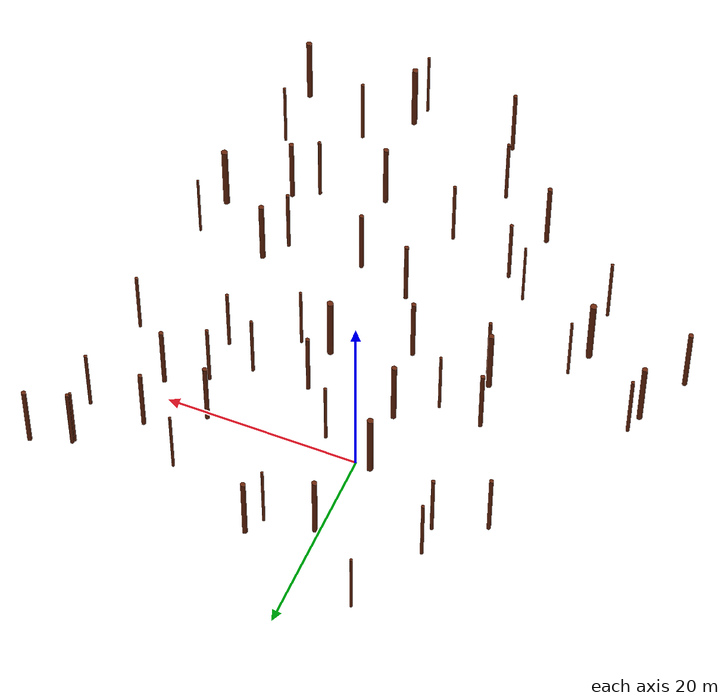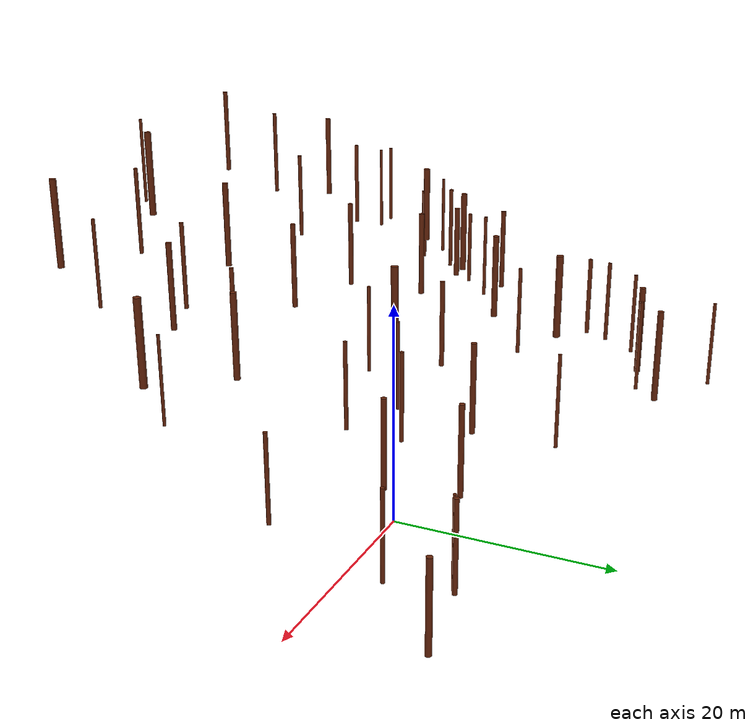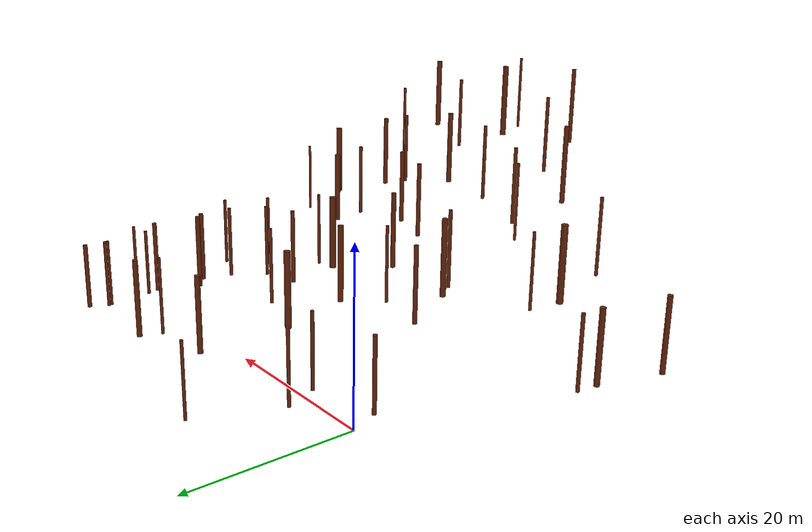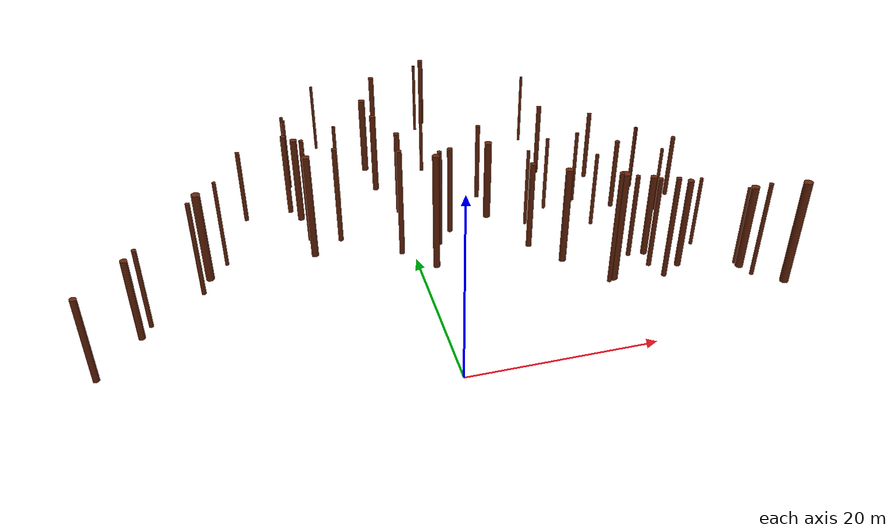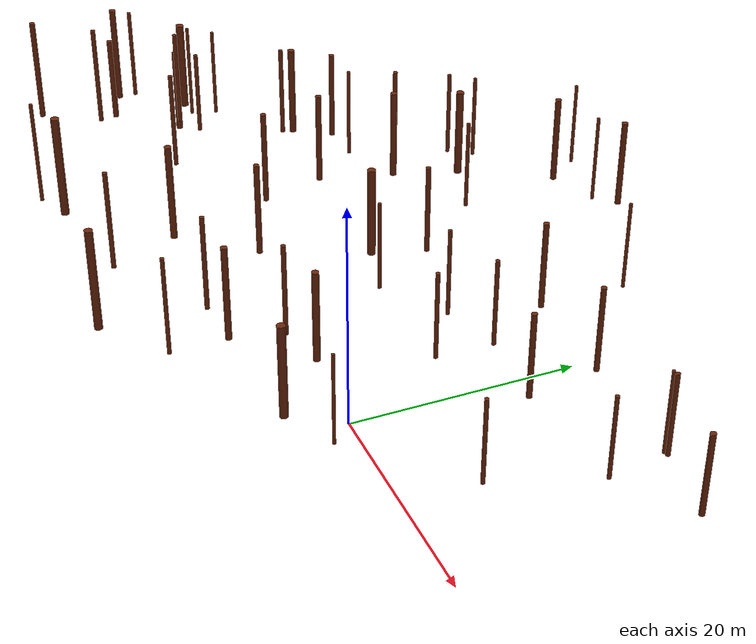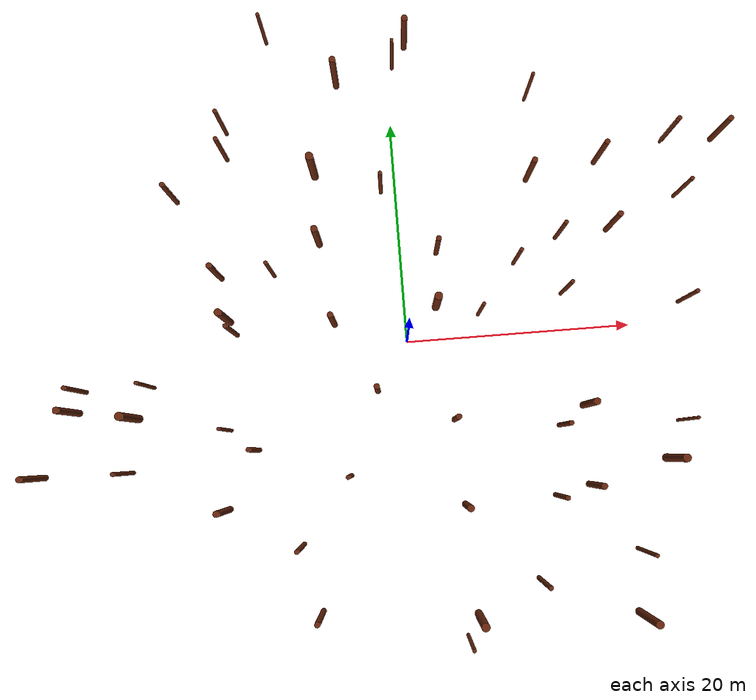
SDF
<sdf version="1.9">
 <world name="terrain_01">
  <plugin filename="gz-sim-physics-system" name="gz::sim::systems::Physics"/>
  <plugin filename="gz-sim-user-commands-system" name="gz::sim::systems::UserCommands"/>
  <plugin filename="gz-sim-scene-broadcaster-system" name="gz::sim::systems::SceneBroadcaster"/>
  <plugin filename="gz-sim-sensors-system" name="gz::sim::systems::Sensors">
   <render_engine>ogre2</render_engine>
  </plugin>
  <plugin filename="gz-sim-imu-system" name="gz::sim::systems::Imu"/>
  <plugin filename="gz-sim-navsat-system" name="gz::sim::systems::NavSat"/>
  <light type="directional" name="sun">
   <pose>0 -7000 7000 0 0 0</pose>
   <diffuse>0.9 0.88 0.82 1</diffuse>
   <specular>0 0 0 1</specular>
   <direction>0.0 0.6 -0.6</direction>
  </light>
  <scene>
   <ambient>0.45 0.48 0.55 1</ambient>
   <grid>false</grid>
   <origin_visual>false</origin_visual>
   <sky><time>10</time><sunrise>6</sunrise><sunset>20</sunset><clouds><speed>12</speed></clouds></sky>
  </scene>
  <physics name="1ms" type="ignored"><dart><collision_detector>bullet</collision_detector></dart></physics>
  <gravity>0 0 -9.8066</gravity>
  <spherical_coordinates>
   <surface_model>EARTH_WGS84</surface_model>
   <latitude_deg>46.492791061116634</latitude_deg>
   <longitude_deg>11.543607991400442</longitude_deg>
   <elevation>2014.2000000000007</elevation>
  </spherical_coordinates>
  <model name="tree_0001">
   <static>true</static>
   <pose>2.0496 -22.2879 30.4058 0 0 1.249334</pose>
   <link name="trunk">
    <visual name="trunk_visual">
     <geometry><cylinder><radius>0.1248</radius><length>7.0000</length></cylinder></geometry>
     <material>
      <ambient>0.22 0.08 0.025 1</ambient>
      <diffuse>0.40 0.14 0.04 1</diffuse>
      <specular>0.05 0.05 0.05 1</specular>
     </material>
    </visual>
    <collision name="trunk_collision">
     <geometry><cylinder><radius>0.1248</radius><length>7.0000</length></cylinder></geometry>
    </collision>
   </link>
  </model>
  <model name="tree_0002">
   <static>true</static>
   <pose>14.0777 -21.9928 27.9152 0 0 0.040833</pose>
   <link name="trunk">
    <visual name="trunk_visual">
     <geometry><cylinder><radius>0.2657</radius><length>7.0000</length></cylinder></geometry>
     <material>
      <ambient>0.22 0.08 0.025 1</ambient>
      <diffuse>0.40 0.14 0.04 1</diffuse>
      <specular>0.05 0.05 0.05 1</specular>
     </material>
    </visual>
    <collision name="trunk_collision">
     <geometry><cylinder><radius>0.2657</radius><length>7.0000</length></cylinder></geometry>
    </collision>
   </link>
  </model>
  <model name="tree_0003">
   <static>true</static>
   <pose>-7.4150 -19.8288 31.4658 0 0 3.468574</pose>
   <link name="trunk">
    <visual name="trunk_visual">
     <geometry><cylinder><radius>0.1881</radius><length>7.0000</length></cylinder></geometry>
     <material>
      <ambient>0.22 0.08 0.025 1</ambient>
      <diffuse>0.40 0.14 0.04 1</diffuse>
      <specular>0.05 0.05 0.05 1</specular>
     </material>
    </visual>
    <collision name="trunk_collision">
     <geometry><cylinder><radius>0.1881</radius><length>7.0000</length></cylinder></geometry>
    </collision>
   </link>
  </model>
  <model name="tree_0004">
   <static>true</static>
   <pose>2.9135 -21.0531 29.5807 0 0 3.627611</pose>
   <link name="trunk">
    <visual name="trunk_visual">
     <geometry><cylinder><radius>0.2751</radius><length>7.0000</length></cylinder></geometry>
     <material>
      <ambient>0.22 0.08 0.025 1</ambient>
      <diffuse>0.40 0.14 0.04 1</diffuse>
      <specular>0.05 0.05 0.05 1</specular>
     </material>
    </visual>
    <collision name="trunk_collision">
     <geometry><cylinder><radius>0.2751</radius><length>7.0000</length></cylinder></geometry>
    </collision>
   </link>
  </model>
  <model name="tree_0005">
   <static>true</static>
   <pose>7.4125 -19.2028 27.6254 0 0 1.818278</pose>
   <link name="trunk">
    <visual name="trunk_visual">
     <geometry><cylinder><radius>0.1610</radius><length>7.0000</length></cylinder></geometry>
     <material>
      <ambient>0.22 0.08 0.025 1</ambient>
      <diffuse>0.40 0.14 0.04 1</diffuse>
      <specular>0.05 0.05 0.05 1</specular>
     </material>
    </visual>
    <collision name="trunk_collision">
     <geometry><cylinder><radius>0.1610</radius><length>7.0000</length></cylinder></geometry>
    </collision>
   </link>
  </model>
  <model name="tree_0006">
   <static>true</static>
   <pose>14.8618 -17.9152 25.4113 0 0 1.746560</pose>
   <link name="trunk">
    <visual name="trunk_visual">
     <geometry><cylinder><radius>0.1382</radius><length>7.0000</length></cylinder></geometry>
     <material>
      <ambient>0.22 0.08 0.025 1</ambient>
      <diffuse>0.40 0.14 0.04 1</diffuse>
      <specular>0.05 0.05 0.05 1</specular>
     </material>
    </visual>
    <collision name="trunk_collision">
     <geometry><cylinder><radius>0.1382</radius><length>7.0000</length></cylinder></geometry>
    </collision>
   </link>
  </model>
  <model name="tree_0007">
   <static>true</static>
   <pose>-28.9152 -9.6150 18.7736 0 0 3.827283</pose>
   <link name="trunk">
    <visual name="trunk_visual">
     <geometry><cylinder><radius>0.2366</radius><length>7.0000</length></cylinder></geometry>
     <material>
      <ambient>0.22 0.08 0.025 1</ambient>
      <diffuse>0.40 0.14 0.04 1</diffuse>
      <specular>0.05 0.05 0.05 1</specular>
     </material>
    </visual>
    <collision name="trunk_collision">
     <geometry><cylinder><radius>0.2366</radius><length>7.0000</length></cylinder></geometry>
    </collision>
   </link>
  </model>
  <model name="tree_0008">
   <static>true</static>
   <pose>-20.8781 -9.7713 24.7475 0 0 2.384189</pose>
   <link name="trunk">
    <visual name="trunk_visual">
     <geometry><cylinder><radius>0.1494</radius><length>7.0000</length></cylinder></geometry>
     <material>
      <ambient>0.22 0.08 0.025 1</ambient>
      <diffuse>0.40 0.14 0.04 1</diffuse>
      <specular>0.05 0.05 0.05 1</specular>
     </material>
    </visual>
    <collision name="trunk_collision">
     <geometry><cylinder><radius>0.1494</radius><length>7.0000</length></cylinder></geometry>
    </collision>
   </link>
  </model>
  <model name="tree_0009">
   <static>true</static>
   <pose>-13.5623 -12.8031 28.5887 0 0 4.301558</pose>
   <link name="trunk">
    <visual name="trunk_visual">
     <geometry><cylinder><radius>0.2203</radius><length>7.0000</length></cylinder></geometry>
     <material>
      <ambient>0.22 0.08 0.025 1</ambient>
      <diffuse>0.40 0.14 0.04 1</diffuse>
      <specular>0.05 0.05 0.05 1</specular>
     </material>
    </visual>
    <collision name="trunk_collision">
     <geometry><cylinder><radius>0.2203</radius><length>7.0000</length></cylinder></geometry>
    </collision>
   </link>
  </model>
  <model name="tree_0010">
   <static>true</static>
   <pose>-8.5092 -15.5024 29.6798 0 0 0.201692</pose>
   <link name="trunk">
    <visual name="trunk_visual">
     <geometry><cylinder><radius>0.1612</radius><length>7.0000</length></cylinder></geometry>
     <material>
      <ambient>0.22 0.08 0.025 1</ambient>
      <diffuse>0.40 0.14 0.04 1</diffuse>
      <specular>0.05 0.05 0.05 1</specular>
     </material>
    </visual>
    <collision name="trunk_collision">
     <geometry><cylinder><radius>0.1612</radius><length>7.0000</length></cylinder></geometry>
    </collision>
   </link>
  </model>
  <model name="tree_0011">
   <static>true</static>
   <pose>-5.0462 -11.1677 26.9442 0 0 5.924476</pose>
   <link name="trunk">
    <visual name="trunk_visual">
     <geometry><cylinder><radius>0.1580</radius><length>7.0000</length></cylinder></geometry>
     <material>
      <ambient>0.22 0.08 0.025 1</ambient>
      <diffuse>0.40 0.14 0.04 1</diffuse>
      <specular>0.05 0.05 0.05 1</specular>
     </material>
    </visual>
    <collision name="trunk_collision">
     <geometry><cylinder><radius>0.1580</radius><length>7.0000</length></cylinder></geometry>
    </collision>
   </link>
  </model>
  <model name="tree_0012">
   <static>true</static>
   <pose>2.8249 -13.8338 25.9651 0 0 2.485829</pose>
   <link name="trunk">
    <visual name="trunk_visual">
     <geometry><cylinder><radius>0.2380</radius><length>7.0000</length></cylinder></geometry>
     <material>
      <ambient>0.22 0.08 0.025 1</ambient>
      <diffuse>0.40 0.14 0.04 1</diffuse>
      <specular>0.05 0.05 0.05 1</specular>
     </material>
    </visual>
    <collision name="trunk_collision">
     <geometry><cylinder><radius>0.2380</radius><length>7.0000</length></cylinder></geometry>
    </collision>
   </link>
  </model>
  <model name="tree_0013">
   <static>true</static>
   <pose>9.4895 -13.7487 24.2896 0 0 1.549606</pose>
   <link name="trunk">
    <visual name="trunk_visual">
     <geometry><cylinder><radius>0.1677</radius><length>7.0000</length></cylinder></geometry>
     <material>
      <ambient>0.22 0.08 0.025 1</ambient>
      <diffuse>0.40 0.14 0.04 1</diffuse>
      <specular>0.05 0.05 0.05 1</specular>
     </material>
    </visual>
    <collision name="trunk_collision">
     <geometry><cylinder><radius>0.1677</radius><length>7.0000</length></cylinder></geometry>
    </collision>
   </link>
  </model>
  <model name="tree_0014">
   <static>true</static>
   <pose>12.1381 -13.2023 23.4419 0 0 5.641188</pose>
   <link name="trunk">
    <visual name="trunk_visual">
     <geometry><cylinder><radius>0.2252</radius><length>7.0000</length></cylinder></geometry>
     <material>
      <ambient>0.22 0.08 0.025 1</ambient>
      <diffuse>0.40 0.14 0.04 1</diffuse>
      <specular>0.05 0.05 0.05 1</specular>
     </material>
    </visual>
    <collision name="trunk_collision">
     <geometry><cylinder><radius>0.2252</radius><length>7.0000</length></cylinder></geometry>
    </collision>
   </link>
  </model>
  <model name="tree_0015">
   <static>true</static>
   <pose>18.4495 -11.7835 21.1998 0 0 3.201448</pose>
   <link name="trunk">
    <visual name="trunk_visual">
     <geometry><cylinder><radius>0.2996</radius><length>7.0000</length></cylinder></geometry>
     <material>
      <ambient>0.22 0.08 0.025 1</ambient>
      <diffuse>0.40 0.14 0.04 1</diffuse>
      <specular>0.05 0.05 0.05 1</specular>
     </material>
    </visual>
    <collision name="trunk_collision">
     <geometry><cylinder><radius>0.2996</radius><length>7.0000</length></cylinder></geometry>
    </collision>
   </link>
  </model>
  <model name="tree_0016">
   <static>true</static>
   <pose>-26.2455 -4.8283 18.0254 0 0 2.652509</pose>
   <link name="trunk">
    <visual name="trunk_visual">
     <geometry><cylinder><radius>0.2626</radius><length>7.0000</length></cylinder></geometry>
     <material>
      <ambient>0.22 0.08 0.025 1</ambient>
      <diffuse>0.40 0.14 0.04 1</diffuse>
      <specular>0.05 0.05 0.05 1</specular>
     </material>
    </visual>
    <collision name="trunk_collision">
     <geometry><cylinder><radius>0.2626</radius><length>7.0000</length></cylinder></geometry>
    </collision>
   </link>
  </model>
  <model name="tree_0017">
   <static>true</static>
   <pose>-20.6082 -5.8529 23.1119 0 0 3.324523</pose>
   <link name="trunk">
    <visual name="trunk_visual">
     <geometry><cylinder><radius>0.2993</radius><length>7.0000</length></cylinder></geometry>
     <material>
      <ambient>0.22 0.08 0.025 1</ambient>
      <diffuse>0.40 0.14 0.04 1</diffuse>
      <specular>0.05 0.05 0.05 1</specular>
     </material>
    </visual>
    <collision name="trunk_collision">
     <geometry><cylinder><radius>0.2993</radius><length>7.0000</length></cylinder></geometry>
    </collision>
   </link>
  </model>
  <model name="tree_0018">
   <static>true</static>
   <pose>-13.4150 -7.3328 26.2119 0 0 4.528429</pose>
   <link name="trunk">
    <visual name="trunk_visual">
     <geometry><cylinder><radius>0.1221</radius><length>7.0000</length></cylinder></geometry>
     <material>
      <ambient>0.22 0.08 0.025 1</ambient>
      <diffuse>0.40 0.14 0.04 1</diffuse>
      <specular>0.05 0.05 0.05 1</specular>
     </material>
    </visual>
    <collision name="trunk_collision">
     <geometry><cylinder><radius>0.1221</radius><length>7.0000</length></cylinder></geometry>
    </collision>
   </link>
  </model>
  <model name="tree_0019">
   <static>true</static>
   <pose>-11.4475 -8.8719 26.8483 0 0 4.027282</pose>
   <link name="trunk">
    <visual name="trunk_visual">
     <geometry><cylinder><radius>0.1680</radius><length>7.0000</length></cylinder></geometry>
     <material>
      <ambient>0.22 0.08 0.025 1</ambient>
      <diffuse>0.40 0.14 0.04 1</diffuse>
      <specular>0.05 0.05 0.05 1</specular>
     </material>
    </visual>
    <collision name="trunk_collision">
     <geometry><cylinder><radius>0.1680</radius><length>7.0000</length></cylinder></geometry>
    </collision>
   </link>
  </model>
  <model name="tree_0020">
   <static>true</static>
   <pose>-2.7823 -5.2372 23.8527 0 0 5.993002</pose>
   <link name="trunk">
    <visual name="trunk_visual">
     <geometry><cylinder><radius>0.2017</radius><length>7.0000</length></cylinder></geometry>
     <material>
      <ambient>0.22 0.08 0.025 1</ambient>
      <diffuse>0.40 0.14 0.04 1</diffuse>
      <specular>0.05 0.05 0.05 1</specular>
     </material>
    </visual>
    <collision name="trunk_collision">
     <geometry><cylinder><radius>0.2017</radius><length>7.0000</length></cylinder></geometry>
    </collision>
   </link>
  </model>
  <model name="tree_0021">
   <static>true</static>
   <pose>2.6967 -7.7149 23.1717 0 0 1.122503</pose>
   <link name="trunk">
    <visual name="trunk_visual">
     <geometry><cylinder><radius>0.2101</radius><length>7.0000</length></cylinder></geometry>
     <material>
      <ambient>0.22 0.08 0.025 1</ambient>
      <diffuse>0.40 0.14 0.04 1</diffuse>
      <specular>0.05 0.05 0.05 1</specular>
     </material>
    </visual>
    <collision name="trunk_collision">
     <geometry><cylinder><radius>0.2101</radius><length>7.0000</length></cylinder></geometry>
    </collision>
   </link>
  </model>
  <model name="tree_0022">
   <static>true</static>
   <pose>10.5850 -8.7252 21.5752 0 0 4.014638</pose>
   <link name="trunk">
    <visual name="trunk_visual">
     <geometry><cylinder><radius>0.1737</radius><length>7.0000</length></cylinder></geometry>
     <material>
      <ambient>0.22 0.08 0.025 1</ambient>
      <diffuse>0.40 0.14 0.04 1</diffuse>
      <specular>0.05 0.05 0.05 1</specular>
     </material>
    </visual>
    <collision name="trunk_collision">
     <geometry><cylinder><radius>0.1737</radius><length>7.0000</length></cylinder></geometry>
    </collision>
   </link>
  </model>
  <model name="tree_0023">
   <static>true</static>
   <pose>12.6927 -7.3435 20.4658 0 0 3.389018</pose>
   <link name="trunk">
    <visual name="trunk_visual">
     <geometry><cylinder><radius>0.2573</radius><length>7.0000</length></cylinder></geometry>
     <material>
      <ambient>0.22 0.08 0.025 1</ambient>
      <diffuse>0.40 0.14 0.04 1</diffuse>
      <specular>0.05 0.05 0.05 1</specular>
     </material>
    </visual>
    <collision name="trunk_collision">
     <geometry><cylinder><radius>0.2573</radius><length>7.0000</length></cylinder></geometry>
    </collision>
   </link>
  </model>
  <model name="tree_0024">
   <static>true</static>
   <pose>20.0249 -9.0342 19.3216 0 0 2.036733</pose>
   <link name="trunk">
    <visual name="trunk_visual">
     <geometry><cylinder><radius>0.1201</radius><length>7.0000</length></cylinder></geometry>
     <material>
      <ambient>0.22 0.08 0.025 1</ambient>
      <diffuse>0.40 0.14 0.04 1</diffuse>
      <specular>0.05 0.05 0.05 1</specular>
     </material>
    </visual>
    <collision name="trunk_collision">
     <geometry><cylinder><radius>0.1201</radius><length>7.0000</length></cylinder></geometry>
    </collision>
   </link>
  </model>
  <model name="tree_0025">
   <static>true</static>
   <pose>-25.6836 -3.2215 17.7475 0 0 0.363955</pose>
   <link name="trunk">
    <visual name="trunk_visual">
     <geometry><cylinder><radius>0.1754</radius><length>7.0000</length></cylinder></geometry>
     <material>
      <ambient>0.22 0.08 0.025 1</ambient>
      <diffuse>0.40 0.14 0.04 1</diffuse>
      <specular>0.05 0.05 0.05 1</specular>
     </material>
    </visual>
    <collision name="trunk_collision">
     <geometry><cylinder><radius>0.1754</radius><length>7.0000</length></cylinder></geometry>
    </collision>
   </link>
  </model>
  <model name="tree_0026">
   <static>true</static>
   <pose>-19.4150 -3.6150 22.6214 0 0 3.053568</pose>
   <link name="trunk">
    <visual name="trunk_visual">
     <geometry><cylinder><radius>0.1354</radius><length>7.0000</length></cylinder></geometry>
     <material>
      <ambient>0.22 0.08 0.025 1</ambient>
      <diffuse>0.40 0.14 0.04 1</diffuse>
      <specular>0.05 0.05 0.05 1</specular>
     </material>
    </visual>
    <collision name="trunk_collision">
     <geometry><cylinder><radius>0.1354</radius><length>7.0000</length></cylinder></geometry>
    </collision>
   </link>
  </model>
  <model name="tree_0027">
   <static>true</static>
   <pose>-13.4150 0.8098 22.9492 0 0 0.806707</pose>
   <link name="trunk">
    <visual name="trunk_visual">
     <geometry><cylinder><radius>0.2579</radius><length>7.0000</length></cylinder></geometry>
     <material>
      <ambient>0.22 0.08 0.025 1</ambient>
      <diffuse>0.40 0.14 0.04 1</diffuse>
      <specular>0.05 0.05 0.05 1</specular>
     </material>
    </visual>
    <collision name="trunk_collision">
     <geometry><cylinder><radius>0.2579</radius><length>7.0000</length></cylinder></geometry>
    </collision>
   </link>
  </model>
  <model name="tree_0028">
   <static>true</static>
   <pose>-12.9114 -0.2242 23.3544 0 0 5.481658</pose>
   <link name="trunk">
    <visual name="trunk_visual">
     <geometry><cylinder><radius>0.1677</radius><length>7.0000</length></cylinder></geometry>
     <material>
      <ambient>0.22 0.08 0.025 1</ambient>
      <diffuse>0.40 0.14 0.04 1</diffuse>
      <specular>0.05 0.05 0.05 1</specular>
     </material>
    </visual>
    <collision name="trunk_collision">
     <geometry><cylinder><radius>0.1677</radius><length>7.0000</length></cylinder></geometry>
    </collision>
   </link>
  </model>
  <model name="tree_0029">
   <static>true</static>
   <pose>-5.6370 0.0258 22.8876 0 0 4.586292</pose>
   <link name="trunk">
    <visual name="trunk_visual">
     <geometry><cylinder><radius>0.2171</radius><length>7.0000</length></cylinder></geometry>
     <material>
      <ambient>0.22 0.08 0.025 1</ambient>
      <diffuse>0.40 0.14 0.04 1</diffuse>
      <specular>0.05 0.05 0.05 1</specular>
     </material>
    </visual>
    <collision name="trunk_collision">
     <geometry><cylinder><radius>0.2171</radius><length>7.0000</length></cylinder></geometry>
    </collision>
   </link>
  </model>
  <model name="tree_0030">
   <static>true</static>
   <pose>2.1073 1.0329 20.5697 0 0 4.083304</pose>
   <link name="trunk">
    <visual name="trunk_visual">
     <geometry><cylinder><radius>0.2991</radius><length>7.0000</length></cylinder></geometry>
     <material>
      <ambient>0.22 0.08 0.025 1</ambient>
      <diffuse>0.40 0.14 0.04 1</diffuse>
      <specular>0.05 0.05 0.05 1</specular>
     </material>
    </visual>
    <collision name="trunk_collision">
     <geometry><cylinder><radius>0.2991</radius><length>7.0000</length></cylinder></geometry>
    </collision>
   </link>
  </model>
  <model name="tree_0031">
   <static>true</static>
   <pose>5.3505 0.3007 19.7545 0 0 1.411815</pose>
   <link name="trunk">
    <visual name="trunk_visual">
     <geometry><cylinder><radius>0.1418</radius><length>7.0000</length></cylinder></geometry>
     <material>
      <ambient>0.22 0.08 0.025 1</ambient>
      <diffuse>0.40 0.14 0.04 1</diffuse>
      <specular>0.05 0.05 0.05 1</specular>
     </material>
    </visual>
    <collision name="trunk_collision">
     <geometry><cylinder><radius>0.1418</radius><length>7.0000</length></cylinder></geometry>
    </collision>
   </link>
  </model>
  <model name="tree_0032">
   <static>true</static>
   <pose>12.1844 1.6518 17.7838 0 0 1.383667</pose>
   <link name="trunk">
    <visual name="trunk_visual">
     <geometry><cylinder><radius>0.1614</radius><length>7.0000</length></cylinder></geometry>
     <material>
      <ambient>0.22 0.08 0.025 1</ambient>
      <diffuse>0.40 0.14 0.04 1</diffuse>
      <specular>0.05 0.05 0.05 1</specular>
     </material>
    </visual>
    <collision name="trunk_collision">
     <geometry><cylinder><radius>0.1614</radius><length>7.0000</length></cylinder></geometry>
    </collision>
   </link>
  </model>
  <model name="tree_0033">
   <static>true</static>
   <pose>22.1331 0.6035 14.5453 0 0 5.688922</pose>
   <link name="trunk">
    <visual name="trunk_visual">
     <geometry><cylinder><radius>0.1612</radius><length>7.0000</length></cylinder></geometry>
     <material>
      <ambient>0.22 0.08 0.025 1</ambient>
      <diffuse>0.40 0.14 0.04 1</diffuse>
      <specular>0.05 0.05 0.05 1</specular>
     </material>
    </visual>
    <collision name="trunk_collision">
     <geometry><cylinder><radius>0.1612</radius><length>7.0000</length></cylinder></geometry>
    </collision>
   </link>
  </model>
  <model name="tree_0034">
   <static>true</static>
   <pose>-14.0235 4.3593 21.5887 0 0 4.929909</pose>
   <link name="trunk">
    <visual name="trunk_visual">
     <geometry><cylinder><radius>0.2051</radius><length>7.0000</length></cylinder></geometry>
     <material>
      <ambient>0.22 0.08 0.025 1</ambient>
      <diffuse>0.40 0.14 0.04 1</diffuse>
      <specular>0.05 0.05 0.05 1</specular>
     </material>
    </visual>
    <collision name="trunk_collision">
     <geometry><cylinder><radius>0.2051</radius><length>7.0000</length></cylinder></geometry>
    </collision>
   </link>
  </model>
  <model name="tree_0035">
   <static>true</static>
   <pose>-9.9555 4.1690 22.0446 0 0 2.708374</pose>
   <link name="trunk">
    <visual name="trunk_visual">
     <geometry><cylinder><radius>0.1374</radius><length>7.0000</length></cylinder></geometry>
     <material>
      <ambient>0.22 0.08 0.025 1</ambient>
      <diffuse>0.40 0.14 0.04 1</diffuse>
      <specular>0.05 0.05 0.05 1</specular>
     </material>
    </visual>
    <collision name="trunk_collision">
     <geometry><cylinder><radius>0.1374</radius><length>7.0000</length></cylinder></geometry>
    </collision>
   </link>
  </model>
  <model name="tree_0036">
   <static>true</static>
   <pose>-6.4050 6.4214 21.4896 0 0 4.230874</pose>
   <link name="trunk">
    <visual name="trunk_visual">
     <geometry><cylinder><radius>0.2512</radius><length>7.0000</length></cylinder></geometry>
     <material>
      <ambient>0.22 0.08 0.025 1</ambient>
      <diffuse>0.40 0.14 0.04 1</diffuse>
      <specular>0.05 0.05 0.05 1</specular>
     </material>
    </visual>
    <collision name="trunk_collision">
     <geometry><cylinder><radius>0.2512</radius><length>7.0000</length></cylinder></geometry>
    </collision>
   </link>
  </model>
  <model name="tree_0037">
   <static>true</static>
   <pose>2.4909 5.2946 20.0035 0 0 2.131901</pose>
   <link name="trunk">
    <visual name="trunk_visual">
     <geometry><cylinder><radius>0.1925</radius><length>7.0000</length></cylinder></geometry>
     <material>
      <ambient>0.22 0.08 0.025 1</ambient>
      <diffuse>0.40 0.14 0.04 1</diffuse>
      <specular>0.05 0.05 0.05 1</specular>
     </material>
    </visual>
    <collision name="trunk_collision">
     <geometry><cylinder><radius>0.1925</radius><length>7.0000</length></cylinder></geometry>
    </collision>
   </link>
  </model>
  <model name="tree_0038">
   <static>true</static>
   <pose>8.5612 4.2299 18.4878 0 0 2.818722</pose>
   <link name="trunk">
    <visual name="trunk_visual">
     <geometry><cylinder><radius>0.1542</radius><length>7.0000</length></cylinder></geometry>
     <material>
      <ambient>0.22 0.08 0.025 1</ambient>
      <diffuse>0.40 0.14 0.04 1</diffuse>
      <specular>0.05 0.05 0.05 1</specular>
     </material>
    </visual>
    <collision name="trunk_collision">
     <geometry><cylinder><radius>0.1542</radius><length>7.0000</length></cylinder></geometry>
    </collision>
   </link>
  </model>
  <model name="tree_0039">
   <static>true</static>
   <pose>12.1597 6.1468 17.6700 0 0 5.801049</pose>
   <link name="trunk">
    <visual name="trunk_visual">
     <geometry><cylinder><radius>0.1650</radius><length>7.0000</length></cylinder></geometry>
     <material>
      <ambient>0.22 0.08 0.025 1</ambient>
      <diffuse>0.40 0.14 0.04 1</diffuse>
      <specular>0.05 0.05 0.05 1</specular>
     </material>
    </visual>
    <collision name="trunk_collision">
     <geometry><cylinder><radius>0.1650</radius><length>7.0000</length></cylinder></geometry>
    </collision>
   </link>
  </model>
  <model name="tree_0040">
   <static>true</static>
   <pose>16.5850 6.7756 15.9396 0 0 0.317856</pose>
   <link name="trunk">
    <visual name="trunk_visual">
     <geometry><cylinder><radius>0.2191</radius><length>7.0000</length></cylinder></geometry>
     <material>
      <ambient>0.22 0.08 0.025 1</ambient>
      <diffuse>0.40 0.14 0.04 1</diffuse>
      <specular>0.05 0.05 0.05 1</specular>
     </material>
    </visual>
    <collision name="trunk_collision">
     <geometry><cylinder><radius>0.2191</radius><length>7.0000</length></cylinder></geometry>
    </collision>
   </link>
  </model>
  <model name="tree_0041">
   <static>true</static>
   <pose>-17.7964 11.5100 16.9881 0 0 0.368417</pose>
   <link name="trunk">
    <visual name="trunk_visual">
     <geometry><cylinder><radius>0.1922</radius><length>7.0000</length></cylinder></geometry>
     <material>
      <ambient>0.22 0.08 0.025 1</ambient>
      <diffuse>0.40 0.14 0.04 1</diffuse>
      <specular>0.05 0.05 0.05 1</specular>
     </material>
    </visual>
    <collision name="trunk_collision">
     <geometry><cylinder><radius>0.1922</radius><length>7.0000</length></cylinder></geometry>
    </collision>
   </link>
  </model>
  <model name="tree_0042">
   <static>true</static>
   <pose>-13.4150 14.3850 18.2147 0 0 4.926461</pose>
   <link name="trunk">
    <visual name="trunk_visual">
     <geometry><cylinder><radius>0.1677</radius><length>7.0000</length></cylinder></geometry>
     <material>
      <ambient>0.22 0.08 0.025 1</ambient>
      <diffuse>0.40 0.14 0.04 1</diffuse>
      <specular>0.05 0.05 0.05 1</specular>
     </material>
    </visual>
    <collision name="trunk_collision">
     <geometry><cylinder><radius>0.1677</radius><length>7.0000</length></cylinder></geometry>
    </collision>
   </link>
  </model>
  <model name="tree_0043">
   <static>true</static>
   <pose>-6.4292 11.9701 20.4669 0 0 6.254425</pose>
   <link name="trunk">
    <visual name="trunk_visual">
     <geometry><cylinder><radius>0.2923</radius><length>7.0000</length></cylinder></geometry>
     <material>
      <ambient>0.22 0.08 0.025 1</ambient>
      <diffuse>0.40 0.14 0.04 1</diffuse>
      <specular>0.05 0.05 0.05 1</specular>
     </material>
    </visual>
    <collision name="trunk_collision">
     <geometry><cylinder><radius>0.2923</radius><length>7.0000</length></cylinder></geometry>
    </collision>
   </link>
  </model>
  <model name="tree_0044">
   <static>true</static>
   <pose>-1.4056 10.2920 20.5738 0 0 1.864270</pose>
   <link name="trunk">
    <visual name="trunk_visual">
     <geometry><cylinder><radius>0.1479</radius><length>7.0000</length></cylinder></geometry>
     <material>
      <ambient>0.22 0.08 0.025 1</ambient>
      <diffuse>0.40 0.14 0.04 1</diffuse>
      <specular>0.05 0.05 0.05 1</specular>
     </material>
    </visual>
    <collision name="trunk_collision">
     <geometry><cylinder><radius>0.1479</radius><length>7.0000</length></cylinder></geometry>
    </collision>
   </link>
  </model>
  <model name="tree_0045">
   <static>true</static>
   <pose>10.1657 10.8710 18.3942 0 0 4.699669</pose>
   <link name="trunk">
    <visual name="trunk_visual">
     <geometry><cylinder><radius>0.2176</radius><length>7.0000</length></cylinder></geometry>
     <material>
      <ambient>0.22 0.08 0.025 1</ambient>
      <diffuse>0.40 0.14 0.04 1</diffuse>
      <specular>0.05 0.05 0.05 1</specular>
     </material>
    </visual>
    <collision name="trunk_collision">
     <geometry><cylinder><radius>0.2176</radius><length>7.0000</length></cylinder></geometry>
    </collision>
   </link>
  </model>
  <model name="tree_0046">
   <static>true</static>
   <pose>16.0654 12.3163 16.2913 0 0 5.357797</pose>
   <link name="trunk">
    <visual name="trunk_visual">
     <geometry><cylinder><radius>0.2105</radius><length>7.0000</length></cylinder></geometry>
     <material>
      <ambient>0.22 0.08 0.025 1</ambient>
      <diffuse>0.40 0.14 0.04 1</diffuse>
      <specular>0.05 0.05 0.05 1</specular>
     </material>
    </visual>
    <collision name="trunk_collision">
     <geometry><cylinder><radius>0.2105</radius><length>7.0000</length></cylinder></geometry>
    </collision>
   </link>
  </model>
  <model name="tree_0047">
   <static>true</static>
   <pose>22.3813 14.3850 12.9912 0 0 1.167573</pose>
   <link name="trunk">
    <visual name="trunk_visual">
     <geometry><cylinder><radius>0.1344</radius><length>7.0000</length></cylinder></geometry>
     <material>
      <ambient>0.22 0.08 0.025 1</ambient>
      <diffuse>0.40 0.14 0.04 1</diffuse>
      <specular>0.05 0.05 0.05 1</specular>
     </material>
    </visual>
    <collision name="trunk_collision">
     <geometry><cylinder><radius>0.1344</radius><length>7.0000</length></cylinder></geometry>
    </collision>
   </link>
  </model>
  <model name="tree_0048">
   <static>true</static>
   <pose>23.1046 9.6985 12.7805 0 0 0.753270</pose>
   <link name="trunk">
    <visual name="trunk_visual">
     <geometry><cylinder><radius>0.1623</radius><length>7.0000</length></cylinder></geometry>
     <material>
      <ambient>0.22 0.08 0.025 1</ambient>
      <diffuse>0.40 0.14 0.04 1</diffuse>
      <specular>0.05 0.05 0.05 1</specular>
     </material>
    </visual>
    <collision name="trunk_collision">
     <geometry><cylinder><radius>0.1623</radius><length>7.0000</length></cylinder></geometry>
    </collision>
   </link>
  </model>
  <model name="tree_0049">
   <static>true</static>
   <pose>-13.4150 16.7184 17.4418 0 0 4.499966</pose>
   <link name="trunk">
    <visual name="trunk_visual">
     <geometry><cylinder><radius>0.1568</radius><length>7.0000</length></cylinder></geometry>
     <material>
      <ambient>0.22 0.08 0.025 1</ambient>
      <diffuse>0.40 0.14 0.04 1</diffuse>
      <specular>0.05 0.05 0.05 1</specular>
     </material>
    </visual>
    <collision name="trunk_collision">
     <geometry><cylinder><radius>0.1568</radius><length>7.0000</length></cylinder></geometry>
    </collision>
   </link>
  </model>
  <model name="tree_0050">
   <static>true</static>
   <pose>-4.2724 19.3876 19.3776 0 0 1.884937</pose>
   <link name="trunk">
    <visual name="trunk_visual">
     <geometry><cylinder><radius>0.2409</radius><length>7.0000</length></cylinder></geometry>
     <material>
      <ambient>0.22 0.08 0.025 1</ambient>
      <diffuse>0.40 0.14 0.04 1</diffuse>
      <specular>0.05 0.05 0.05 1</specular>
     </material>
    </visual>
    <collision name="trunk_collision">
     <geometry><cylinder><radius>0.2409</radius><length>7.0000</length></cylinder></geometry>
    </collision>
   </link>
  </model>
  <model name="tree_0051">
   <static>true</static>
   <pose>0.2362 20.3850 19.7527 0 0 2.879493</pose>
   <link name="trunk">
    <visual name="trunk_visual">
     <geometry><cylinder><radius>0.1331</radius><length>7.0000</length></cylinder></geometry>
     <material>
      <ambient>0.22 0.08 0.025 1</ambient>
      <diffuse>0.40 0.14 0.04 1</diffuse>
      <specular>0.05 0.05 0.05 1</specular>
     </material>
    </visual>
    <collision name="trunk_collision">
     <geometry><cylinder><radius>0.1331</radius><length>7.0000</length></cylinder></geometry>
    </collision>
   </link>
  </model>
  <model name="tree_0052">
   <static>true</static>
   <pose>10.5850 17.3203 18.7089 0 0 1.339288</pose>
   <link name="trunk">
    <visual name="trunk_visual">
     <geometry><cylinder><radius>0.1332</radius><length>7.0000</length></cylinder></geometry>
     <material>
      <ambient>0.22 0.08 0.025 1</ambient>
      <diffuse>0.40 0.14 0.04 1</diffuse>
      <specular>0.05 0.05 0.05 1</specular>
     </material>
    </visual>
    <collision name="trunk_collision">
     <geometry><cylinder><radius>0.1332</radius><length>7.0000</length></cylinder></geometry>
    </collision>
   </link>
  </model>
  <model name="tree_0053">
   <static>true</static>
   <pose>22.5850 14.5860 12.8620 0 0 0.991153</pose>
   <link name="trunk">
    <visual name="trunk_visual">
     <geometry><cylinder><radius>0.1865</radius><length>7.0000</length></cylinder></geometry>
     <material>
      <ambient>0.22 0.08 0.025 1</ambient>
      <diffuse>0.40 0.14 0.04 1</diffuse>
      <specular>0.05 0.05 0.05 1</specular>
     </material>
    </visual>
    <collision name="trunk_collision">
     <geometry><cylinder><radius>0.1865</radius><length>7.0000</length></cylinder></geometry>
    </collision>
   </link>
  </model>
  <model name="tree_0054">
   <static>true</static>
   <pose>27.1514 14.6881 11.1217 0 0 6.202968</pose>
   <link name="trunk">
    <visual name="trunk_visual">
     <geometry><cylinder><radius>0.2301</radius><length>7.0000</length></cylinder></geometry>
     <material>
      <ambient>0.22 0.08 0.025 1</ambient>
      <diffuse>0.40 0.14 0.04 1</diffuse>
      <specular>0.05 0.05 0.05 1</specular>
     </material>
    </visual>
    <collision name="trunk_collision">
     <geometry><cylinder><radius>0.2301</radius><length>7.0000</length></cylinder></geometry>
    </collision>
   </link>
  </model>
  <model name="tree_0055">
   <static>true</static>
   <pose>-9.7566 24.1251 17.0274 0 0 3.476007</pose>
   <link name="trunk">
    <visual name="trunk_visual">
     <geometry><cylinder><radius>0.1393</radius><length>7.0000</length></cylinder></geometry>
     <material>
      <ambient>0.22 0.08 0.025 1</ambient>
      <diffuse>0.40 0.14 0.04 1</diffuse>
      <specular>0.05 0.05 0.05 1</specular>
     </material>
    </visual>
    <collision name="trunk_collision">
     <geometry><cylinder><radius>0.1393</radius><length>7.0000</length></cylinder></geometry>
    </collision>
   </link>
  </model>
  <model name="tree_0056">
   <static>true</static>
   <pose>1.3123 22.0633 19.5601 0 0 1.658660</pose>
   <link name="trunk">
    <visual name="trunk_visual">
     <geometry><cylinder><radius>0.2342</radius><length>7.0000</length></cylinder></geometry>
     <material>
      <ambient>0.22 0.08 0.025 1</ambient>
      <diffuse>0.40 0.14 0.04 1</diffuse>
      <specular>0.05 0.05 0.05 1</specular>
     </material>
    </visual>
    <collision name="trunk_collision">
     <geometry><cylinder><radius>0.2342</radius><length>7.0000</length></cylinder></geometry>
    </collision>
   </link>
  </model>
 </world>
</sdf>
